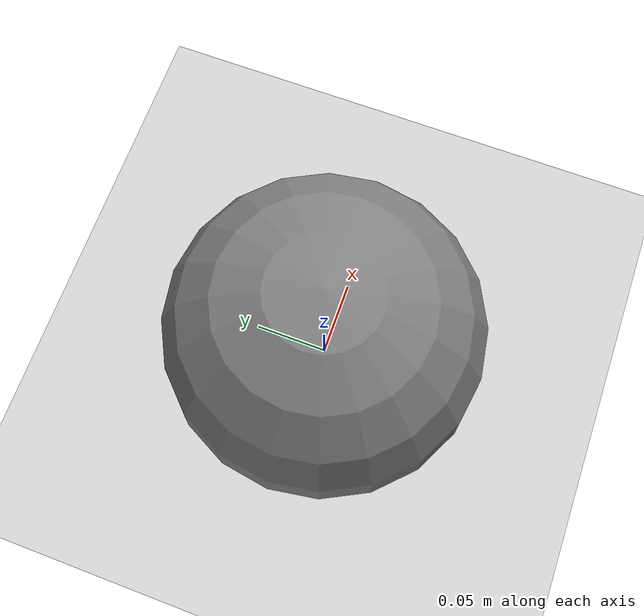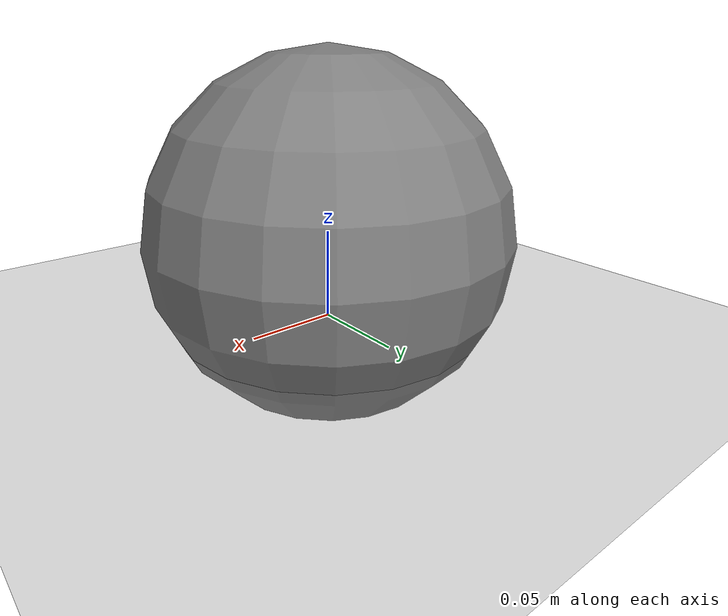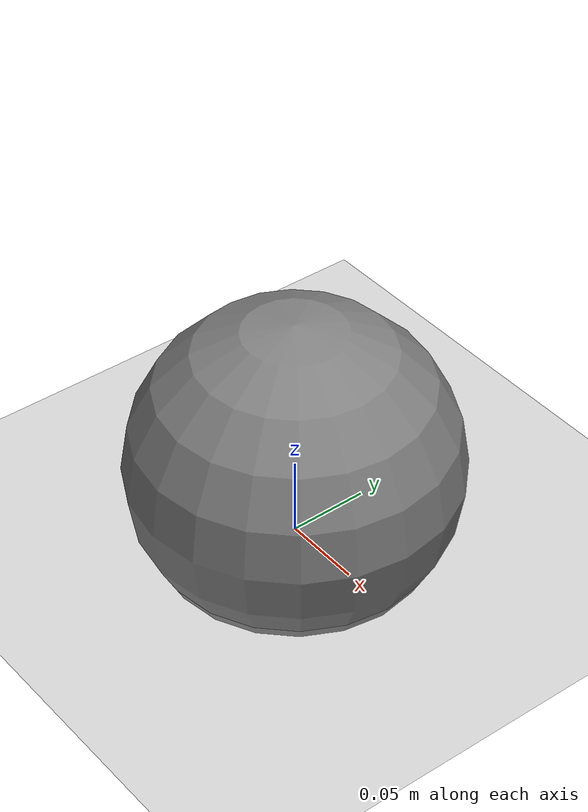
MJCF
<mujoco model="s32_pgs_nonneg">
            <option gravity="0 0 -9.81" timestep="0.002" solver="PGS"
                    cone="pyramidal" iterations="200"/>
            <worldbody>
                <geom name="floor" type="plane" size="5 5 0.1"/>
                <body name="ball" pos="0 0 0.05">
                    <joint type="free"/>
                    <geom name="sphere" type="sphere" size="0.1" mass="1.0"
                          condim="3" friction="0.5 0.5 0.005 0.001 0.001"/>
                </body>
            </worldbody>
        </mujoco>
